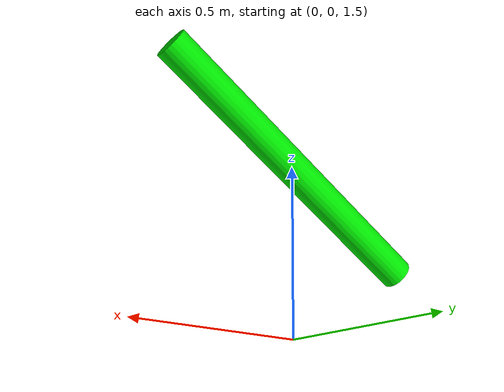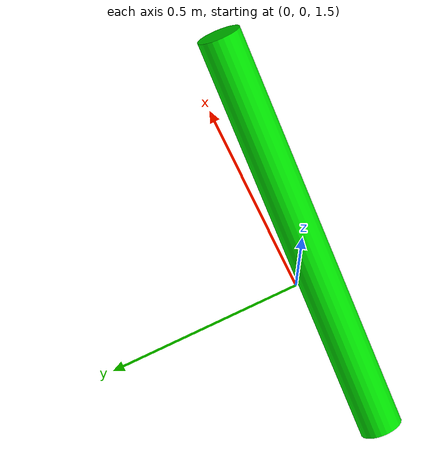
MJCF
<mujoco>

	<worldbody>
        <light diffuse=".5 .5 .5" pos="0 0 3" dir="0 0 -1"/>
		<geom type="plane" size="1 1 0.1" rgba=".9 0 0 1"/>
		<body pos="0 0 2" euler="0 60 0">
			<joint name="pin" type="hinge" axis = "0 -1 0" pos="0 0 0.5"/>
			<geom type="cylinder" size="0.05 0.5" rgba="0 .9 0 1" mass="1"/>
		</body>
	</worldbody>
	<actuator>
		<motor joint="pin" name="torque" gear="1" ctrllimited="true" ctrlrange="-100 100" />
		<position name="position_servo" joint="pin" kp="0" />
		<velocity name="velocity_servo" joint="pin" kv="0" />
	</actuator>
	<sensor>
		<jointpos joint="pin" noise="0.2"/>
		<jointvel joint="pin" noise="1" />
	</sensor>
</mujoco>
